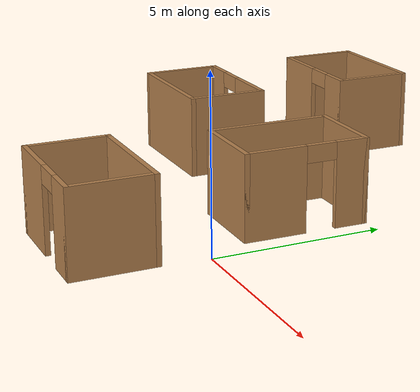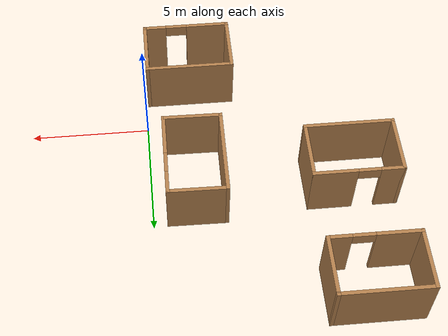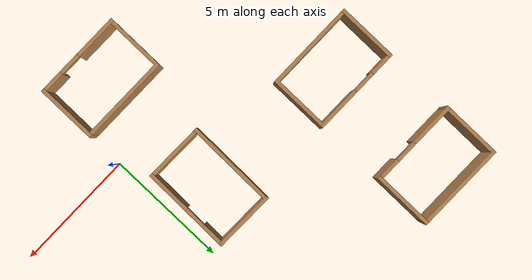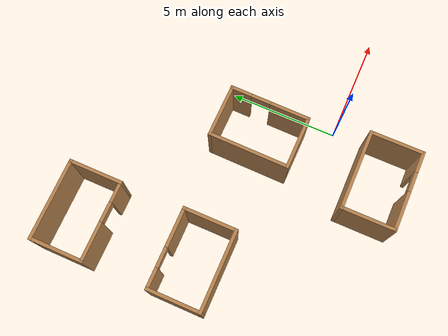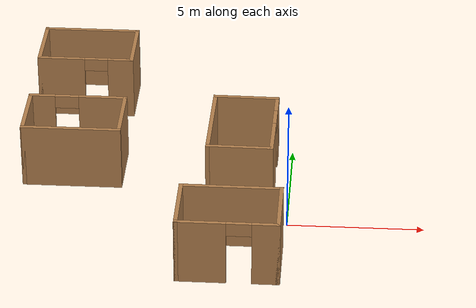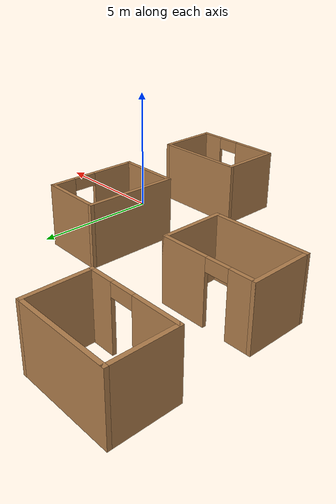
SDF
<sdf version="1.6">
 <world name="default">
  <model name="Small_Room_clone_5">
   <pose>-8.18512 3.39277 0 0 0 -3.14016</pose>
   <link name="Wall_0">
    <pose>0 -1.175 0 0 -0 0</pose>
    <visual name="Wall_0_Visual_0">
     <pose>-0.9525 0 1.25 0 -0 0</pose>
     <geometry><box><size>1.845 0.15 2.5</size></box></geometry>
     <material>
      <script><uri>file://media/materials/scripts/gazebo.material</uri><name>Gazebo/Wood</name></script>
      <ambient>1 1 1 1</ambient>
     </material>
     <meta><layer>0</layer></meta>
    </visual>
    <collision name="Wall_0_Collision_0">
     <geometry><box><size>1.845 0.15 2.5</size></box></geometry>
     <pose>-0.9525 0 1.25 0 -0 0</pose>
    </collision>
    <visual name="Wall_0_Visual_1">
     <pose>1.3725 0 1.25 0 -0 0</pose>
     <geometry><box><size>1.005 0.15 2.5</size></box></geometry>
     <material>
      <script><uri>file://media/materials/scripts/gazebo.material</uri><name>Gazebo/Wood</name></script>
      <ambient>1 1 1 1</ambient>
     </material>
     <meta><layer>0</layer></meta>
    </visual>
    <collision name="Wall_0_Collision_1">
     <geometry><box><size>1.005 0.15 2.5</size></box></geometry>
     <pose>1.3725 0 1.25 0 -0 0</pose>
    </collision>
    <visual name="Wall_0_Visual_2">
     <pose>0.42 0 2.25 0 -0 0</pose>
     <geometry><box><size>0.9 0.15 0.5</size></box></geometry>
     <material>
      <script><uri>file://media/materials/scripts/gazebo.material</uri><name>Gazebo/Wood</name></script>
      <ambient>1 1 1 1</ambient>
     </material>
     <meta><layer>0</layer></meta>
    </visual>
    <collision name="Wall_0_Collision_2">
     <geometry><box><size>0.9 0.15 0.5</size></box></geometry>
     <pose>0.42 0 2.25 0 -0 0</pose>
    </collision>
   </link>
   <link name="Wall_1">
    <collision name="Wall_1_Collision">
     <geometry><box><size>2.5 0.15 2.5</size></box></geometry>
     <pose>0 0 1.25 0 -0 0</pose>
    </collision>
    <visual name="Wall_1_Visual">
     <pose>0 0 1.25 0 -0 0</pose>
     <geometry><box><size>2.5 0.15 2.5</size></box></geometry>
     <material>
      <script><uri>file://media/materials/scripts/gazebo.material</uri><name>Gazebo/Wood</name></script>
      <ambient>1 1 1 1</ambient>
     </material>
     <meta><layer>0</layer></meta>
    </visual>
    <pose>1.8 0 0 0 -0 1.5708</pose>
   </link>
   <link name="Wall_2">
    <collision name="Wall_2_Collision">
     <geometry><box><size>3.75 0.15 2.5</size></box></geometry>
     <pose>0 0 1.25 0 -0 0</pose>
    </collision>
    <visual name="Wall_2_Visual">
     <pose>0 0 1.25 0 -0 0</pose>
     <geometry><box><size>3.75 0.15 2.5</size></box></geometry>
     <material>
      <script><uri>file://media/materials/scripts/gazebo.material</uri><name>Gazebo/Wood</name></script>
      <ambient>0.760784 0.662745 0.627451 1</ambient>
     </material>
     <meta><layer>0</layer></meta>
    </visual>
    <pose>0 1.175 0 0 -0 3.14159</pose>
   </link>
   <link name="Wall_3">
    <collision name="Wall_3_Collision">
     <geometry><box><size>2.5 0.15 2.5</size></box></geometry>
     <pose>0 0 1.25 0 -0 0</pose>
    </collision>
    <visual name="Wall_3_Visual">
     <pose>0 0 1.25 0 -0 0</pose>
     <geometry><box><size>2.5 0.15 2.5</size></box></geometry>
     <material>
      <script><uri>file://media/materials/scripts/gazebo.material</uri><name>Gazebo/Wood</name></script>
      <ambient>0.760784 0.662745 0.627451 1</ambient>
     </material>
     <meta><layer>0</layer></meta>
    </visual>
    <pose>-1.8 0 0 0 0 -1.5708</pose>
   </link>
   <static>1</static>
  </model>
  <model name="Small_Room_clone_6_0">
   <link name="Wall_0">
    <pose>0 -1.175 0 0 -0 0</pose>
    <inertial>
     <mass>1</mass>
     <inertia><ixx>1</ixx><ixy>0</ixy><ixz>0</ixz><iyy>1</iyy><iyz>0</iyz><izz>1</izz></inertia>
    </inertial>
    <visual name="Wall_0_Visual_0">
     <pose>-0.9525 0 1.25 0 -0 0</pose>
     <geometry><box><size>1.845 0.15 2.5</size></box></geometry>
     <material>
      <script><uri>file://media/materials/scripts/gazebo.material</uri><name>Gazebo/Wood</name></script>
      <ambient>1 1 1 1</ambient>
      <diffuse>1 1 0.7 1</diffuse>
      <specular>0.6 0.3 0.3 1</specular>
      <emissive>0 0.4 0.2 1</emissive>
      <shader type="vertex"><normal_map>__default__</normal_map></shader>
     </material>
     <meta><layer>0</layer></meta>
    </visual>
    <visual name="Wall_0_Visual_1">
     <pose>1.3725 0 1.25 0 -0 0</pose>
     <geometry><box><size>1.005 0.15 2.5</size></box></geometry>
     <material>
      <script><uri>file://media/materials/scripts/gazebo.material</uri><name>Gazebo/Wood</name></script>
      <ambient>1 1 1 1</ambient>
      <diffuse>1 1 1 1</diffuse>
      <specular>0.2 0.2 0.2 1</specular>
      <emissive>0 0 0 1</emissive>
      <shader type="vertex"><normal_map>__default__</normal_map></shader>
     </material>
     <meta><layer>0</layer></meta>
    </visual>
    <visual name="Wall_0_Visual_2">
     <pose>0.42 0 2.25 0 -0 0</pose>
     <geometry><box><size>0.9 0.15 0.5</size></box></geometry>
     <material>
      <script><uri>file://media/materials/scripts/gazebo.material</uri><name>Gazebo/Wood</name></script>
      <ambient>1 1 1 1</ambient>
      <diffuse>1 1 1 1</diffuse>
      <specular>0.2 0.2 0.2 1</specular>
      <emissive>0 0 0 1</emissive>
      <shader type="vertex"><normal_map>__default__</normal_map></shader>
     </material>
     <meta><layer>0</layer></meta>
    </visual>
    <collision name="Wall_0_Collision_0">
     <pose>-0.9525 0 1.25 0 -0 0</pose>
     <geometry><box><size>1.845 0.15 2.5</size></box></geometry>
     <surface>
      <friction>
       <ode><mu>1</mu><mu2>1</mu2><fdir1>0 0 0</fdir1><slip1>0</slip1><slip2>0</slip2></ode>
       <torsional>
        <coefficient>1</coefficient>
        <patch_radius>0</patch_radius>
        <surface_radius>0</surface_radius>
        <use_patch_radius>1</use_patch_radius>
        <ode><slip>0</slip></ode>
       </torsional>
      </friction>
      <bounce><restitution_coefficient>0</restitution_coefficient><threshold>1e+06</threshold></bounce>
      <contact>
       <collide_without_contact>0</collide_without_contact>
       <collide_without_contact_bitmask>1</collide_without_contact_bitmask>
       <collide_bitmask>1</collide_bitmask>
       <ode>
        <soft_cfm>0</soft_cfm>
        <soft_erp>0.2</soft_erp>
        <kp>1e+13</kp>
        <kd>1</kd>
        <max_vel>0.01</max_vel>
        <min_depth>0</min_depth>
       </ode>
       <bullet>
        <split_impulse>1</split_impulse>
        <split_impulse_penetration_threshold>-0.01</split_impulse_penetration_threshold>
        <soft_cfm>0</soft_cfm>
        <soft_erp>0.2</soft_erp>
        <kp>1e+13</kp>
        <kd>1</kd>
       </bullet>
      </contact>
     </surface>
    </collision>
    <collision name="Wall_0_Collision_1">
     <pose>1.3725 0 1.25 0 -0 0</pose>
     <geometry><box><size>1.005 0.15 2.5</size></box></geometry>
     <surface>
      <friction>
       <ode><mu>1</mu><mu2>1</mu2><fdir1>0 0 0</fdir1><slip1>0</slip1><slip2>0</slip2></ode>
       <torsional>
        <coefficient>1</coefficient>
        <patch_radius>0</patch_radius>
        <surface_radius>0</surface_radius>
        <use_patch_radius>1</use_patch_radius>
        <ode><slip>0</slip></ode>
       </torsional>
      </friction>
      <bounce><restitution_coefficient>0</restitution_coefficient><threshold>1e+06</threshold></bounce>
      <contact>
       <collide_without_contact>0</collide_without_contact>
       <collide_without_contact_bitmask>1</collide_without_contact_bitmask>
       <collide_bitmask>1</collide_bitmask>
       <ode>
        <soft_cfm>0</soft_cfm>
        <soft_erp>0.2</soft_erp>
        <kp>1e+13</kp>
        <kd>1</kd>
        <max_vel>0.01</max_vel>
        <min_depth>0</min_depth>
       </ode>
       <bullet>
        <split_impulse>1</split_impulse>
        <split_impulse_penetration_threshold>-0.01</split_impulse_penetration_threshold>
        <soft_cfm>0</soft_cfm>
        <soft_erp>0.2</soft_erp>
        <kp>1e+13</kp>
        <kd>1</kd>
       </bullet>
      </contact>
     </surface>
    </collision>
    <collision name="Wall_0_Collision_2">
     <pose>0.42 0 2.25 0 -0 0</pose>
     <geometry><box><size>0.9 0.15 0.5</size></box></geometry>
     <surface>
      <friction>
       <ode><mu>1</mu><mu2>1</mu2><fdir1>0 0 0</fdir1><slip1>0</slip1><slip2>0</slip2></ode>
       <torsional>
        <coefficient>1</coefficient>
        <patch_radius>0</patch_radius>
        <surface_radius>0</surface_radius>
        <use_patch_radius>1</use_patch_radius>
        <ode><slip>0</slip></ode>
       </torsional>
      </friction>
      <bounce><restitution_coefficient>0</restitution_coefficient><threshold>1e+06</threshold></bounce>
      <contact>
       <collide_without_contact>0</collide_without_contact>
       <collide_without_contact_bitmask>1</collide_without_contact_bitmask>
       <collide_bitmask>1</collide_bitmask>
       <ode>
        <soft_cfm>0</soft_cfm>
        <soft_erp>0.2</soft_erp>
        <kp>1e+13</kp>
        <kd>1</kd>
        <max_vel>0.01</max_vel>
        <min_depth>0</min_depth>
       </ode>
       <bullet>
        <split_impulse>1</split_impulse>
        <split_impulse_penetration_threshold>-0.01</split_impulse_penetration_threshold>
        <soft_cfm>0</soft_cfm>
        <soft_erp>0.2</soft_erp>
        <kp>1e+13</kp>
        <kd>1</kd>
       </bullet>
      </contact>
     </surface>
    </collision>
   </link>
   <link name="Wall_1">
    <pose>1.8 0 0 0 -0 1.5708</pose>
    <visual name="Wall_1_Visual">
     <pose>0 0 1.25 0 -0 0</pose>
     <geometry><box><size>2.5 0.15 2.5</size></box></geometry>
     <material>
      <script><uri>file://media/materials/scripts/gazebo.material</uri><name>Gazebo/Wood</name></script>
      <ambient>1 1 1 1</ambient>
      <diffuse>1 1 1 1</diffuse>
      <specular>0.2 0.2 0.2 1</specular>
      <emissive>0 0 0 1</emissive>
     </material>
     <meta><layer>0</layer></meta>
    </visual>
    <collision name="Wall_1_Collision">
     <pose>0 0 1.25 0 -0 0</pose>
     <geometry><box><size>2.5 0.15 2.5</size></box></geometry>
     <surface>
      <friction>
       <ode><mu>1</mu><mu2>1</mu2><fdir1>0 0 0</fdir1><slip1>0</slip1><slip2>0</slip2></ode>
       <torsional>
        <coefficient>1</coefficient>
        <patch_radius>0</patch_radius>
        <surface_radius>0</surface_radius>
        <use_patch_radius>1</use_patch_radius>
        <ode><slip>0</slip></ode>
       </torsional>
      </friction>
      <bounce><restitution_coefficient>0</restitution_coefficient><threshold>1e+06</threshold></bounce>
      <contact>
       <collide_without_contact>0</collide_without_contact>
       <collide_without_contact_bitmask>1</collide_without_contact_bitmask>
       <collide_bitmask>1</collide_bitmask>
       <ode>
        <soft_cfm>0</soft_cfm>
        <soft_erp>0.2</soft_erp>
        <kp>1e+13</kp>
        <kd>1</kd>
        <max_vel>0.01</max_vel>
        <min_depth>0</min_depth>
       </ode>
       <bullet>
        <split_impulse>1</split_impulse>
        <split_impulse_penetration_threshold>-0.01</split_impulse_penetration_threshold>
        <soft_cfm>0</soft_cfm>
        <soft_erp>0.2</soft_erp>
        <kp>1e+13</kp>
        <kd>1</kd>
       </bullet>
      </contact>
     </surface>
    </collision>
   </link>
   <link name="Wall_2">
    <pose>0 1.175 0 0 -0 3.14159</pose>
    <inertial>
     <mass>1</mass>
     <inertia><ixx>1</ixx><ixy>0</ixy><ixz>0</ixz><iyy>1</iyy><iyz>0</iyz><izz>1</izz></inertia>
    </inertial>
    <visual name="Wall_2_Visual">
     <pose>0 0 1.25 0 -0 0</pose>
     <geometry><box><size>3.75 0.15 2.5</size></box></geometry>
     <material>
      <script><uri>file://media/materials/scripts/gazebo.material</uri><name>Gazebo/Wood</name></script>
      <ambient>0.961 0.363 0.227 1</ambient>
      <diffuse>0.6 0.6 0.7 1</diffuse>
      <specular>0.5 0.6 0.5 1</specular>
      <emissive>0.3 0 0 1</emissive>
      <shader type="vertex"><normal_map>__default__</normal_map></shader>
     </material>
     <meta><layer>0</layer></meta>
    </visual>
    <collision name="Wall_2_Collision">
     <pose>0 0 1.25 0 -0 0</pose>
     <geometry><box><size>3.75 0.15 2.5</size></box></geometry>
     <surface>
      <friction>
       <ode><mu>1</mu><mu2>1</mu2><fdir1>0 0 0</fdir1><slip1>0</slip1><slip2>0</slip2></ode>
       <torsional>
        <coefficient>1</coefficient>
        <patch_radius>0</patch_radius>
        <surface_radius>0</surface_radius>
        <use_patch_radius>1</use_patch_radius>
        <ode><slip>0</slip></ode>
       </torsional>
      </friction>
      <bounce><restitution_coefficient>0</restitution_coefficient><threshold>1e+06</threshold></bounce>
      <contact>
       <collide_without_contact>0</collide_without_contact>
       <collide_without_contact_bitmask>1</collide_without_contact_bitmask>
       <collide_bitmask>1</collide_bitmask>
       <ode>
        <soft_cfm>0</soft_cfm>
        <soft_erp>0.2</soft_erp>
        <kp>1e+13</kp>
        <kd>1</kd>
        <max_vel>0.01</max_vel>
        <min_depth>0</min_depth>
       </ode>
       <bullet>
        <split_impulse>1</split_impulse>
        <split_impulse_penetration_threshold>-0.01</split_impulse_penetration_threshold>
        <soft_cfm>0</soft_cfm>
        <soft_erp>0.2</soft_erp>
        <kp>1e+13</kp>
        <kd>1</kd>
       </bullet>
      </contact>
     </surface>
    </collision>
   </link>
   <link name="Wall_3">
    <pose>-1.8 0 0 0 0 -1.5708</pose>
    <inertial>
     <mass>1</mass>
     <inertia><ixx>1</ixx><ixy>0</ixy><ixz>0</ixz><iyy>1</iyy><iyz>0</iyz><izz>1</izz></inertia>
    </inertial>
    <visual name="Wall_3_Visual">
     <pose>0 0 1.25 0 -0 0</pose>
     <geometry><box><size>2.5 0.15 2.5</size></box></geometry>
     <material>
      <script><uri>file://media/materials/scripts/gazebo.material</uri><name>Gazebo/Wood</name></script>
      <ambient>0.761 0.663 0.627 1</ambient>
      <diffuse>0.6 0.6 1 1</diffuse>
      <specular>0.4 0.2 0.4 1</specular>
      <emissive>0 0 0 1</emissive>
      <shader type="vertex"><normal_map>__default__</normal_map></shader>
     </material>
     <meta><layer>0</layer></meta>
    </visual>
    <collision name="Wall_3_Collision">
     <pose>0 0 1.25 0 -0 0</pose>
     <geometry><box><size>2.5 0.15 2.5</size></box></geometry>
     <surface>
      <friction>
       <ode><mu>1</mu><mu2>1</mu2><fdir1>0 0 0</fdir1><slip1>0</slip1><slip2>0</slip2></ode>
       <torsional>
        <coefficient>1</coefficient>
        <patch_radius>0</patch_radius>
        <surface_radius>0</surface_radius>
        <use_patch_radius>1</use_patch_radius>
        <ode><slip>0</slip></ode>
       </torsional>
      </friction>
      <bounce><restitution_coefficient>0</restitution_coefficient><threshold>1e+06</threshold></bounce>
      <contact>
       <collide_without_contact>0</collide_without_contact>
       <collide_without_contact_bitmask>1</collide_without_contact_bitmask>
       <collide_bitmask>1</collide_bitmask>
       <ode>
        <soft_cfm>0</soft_cfm>
        <soft_erp>0.2</soft_erp>
        <kp>1e+13</kp>
        <kd>1</kd>
        <max_vel>0.01</max_vel>
        <min_depth>0</min_depth>
       </ode>
       <bullet>
        <split_impulse>1</split_impulse>
        <split_impulse_penetration_threshold>-0.01</split_impulse_penetration_threshold>
        <soft_cfm>0</soft_cfm>
        <soft_erp>0.2</soft_erp>
        <kp>1e+13</kp>
        <kd>1</kd>
       </bullet>
      </contact>
     </surface>
    </collision>
   </link>
   <static>1</static>
   <pose>-1.95591 -2.58707 0 0 -0 0</pose>
  </model>
  <model name="Small_Room_clone_4_0">
   <link name="Wall_0">
    <pose>0 -1.175 0 0 -0 0</pose>
    <inertial>
     <mass>1</mass>
     <inertia><ixx>1</ixx><ixy>0</ixy><ixz>0</ixz><iyy>1</iyy><iyz>0</iyz><izz>1</izz></inertia>
    </inertial>
    <visual name="Wall_0_Visual_0">
     <pose>-0.9525 0 1.25 0 -0 0</pose>
     <geometry><box><size>1.845 0.15 2.5</size></box></geometry>
     <material>
      <script><uri>file://media/materials/scripts/gazebo.material</uri><name>Gazebo/Wood</name></script>
      <ambient>0.4 0 1 1</ambient>
      <diffuse>0.6 0.5 0.4 1</diffuse>
      <specular>0.3 0.5 0.1 1</specular>
      <emissive>0 0 0 1</emissive>
      <shader type="vertex"><normal_map>__default__</normal_map></shader>
     </material>
     <meta><layer>0</layer></meta>
    </visual>
    <visual name="Wall_0_Visual_1">
     <pose>1.3725 0 1.25 0 -0 0</pose>
     <geometry><box><size>1.005 0.15 2.5</size></box></geometry>
     <material>
      <script><uri>file://media/materials/scripts/gazebo.material</uri><name>Gazebo/Wood</name></script>
      <ambient>0.5 0.7 0.6 1</ambient>
      <diffuse>0.5 0.3 0.6 1</diffuse>
      <specular>0.4 0.3 0.1 1</specular>
      <emissive>0 0 0 1</emissive>
      <shader type="vertex"><normal_map>__default__</normal_map></shader>
     </material>
     <meta><layer>0</layer></meta>
    </visual>
    <visual name="Wall_0_Visual_2">
     <pose>0.42 0 2.25 0 -0 0</pose>
     <geometry><box><size>0.9 0.15 0.5</size></box></geometry>
     <material>
      <script><uri>file://media/materials/scripts/gazebo.material</uri><name>Gazebo/Wood</name></script>
      <ambient>0.5 0.6 0.6 1</ambient>
      <diffuse>0.5 0.6 0.4 1</diffuse>
      <specular>0.1 0.3 0.3 1</specular>
      <emissive>0 0 0 1</emissive>
      <shader type="vertex"><normal_map>__default__</normal_map></shader>
     </material>
     <meta><layer>0</layer></meta>
    </visual>
    <collision name="Wall_0_Collision_0">
     <pose>-0.9525 0 1.25 0 -0 0</pose>
     <geometry><box><size>1.845 0.15 2.5</size></box></geometry>
     <surface>
      <friction>
       <ode><mu>1</mu><mu2>1</mu2><fdir1>0 0 0</fdir1><slip1>0</slip1><slip2>0</slip2></ode>
       <torsional>
        <coefficient>1</coefficient>
        <patch_radius>0</patch_radius>
        <surface_radius>0</surface_radius>
        <use_patch_radius>1</use_patch_radius>
        <ode><slip>0</slip></ode>
       </torsional>
      </friction>
      <bounce><restitution_coefficient>0</restitution_coefficient><threshold>1e+06</threshold></bounce>
      <contact>
       <collide_without_contact>0</collide_without_contact>
       <collide_without_contact_bitmask>1</collide_without_contact_bitmask>
       <collide_bitmask>1</collide_bitmask>
       <ode>
        <soft_cfm>0</soft_cfm>
        <soft_erp>0.2</soft_erp>
        <kp>1e+13</kp>
        <kd>1</kd>
        <max_vel>0.01</max_vel>
        <min_depth>0</min_depth>
       </ode>
       <bullet>
        <split_impulse>1</split_impulse>
        <split_impulse_penetration_threshold>-0.01</split_impulse_penetration_threshold>
        <soft_cfm>0</soft_cfm>
        <soft_erp>0.2</soft_erp>
        <kp>1e+13</kp>
        <kd>1</kd>
       </bullet>
      </contact>
     </surface>
    </collision>
    <collision name="Wall_0_Collision_1">
     <pose>1.3725 0 1.25 0 -0 0</pose>
     <geometry><box><size>1.005 0.15 2.5</size></box></geometry>
     <surface>
      <friction>
       <ode><mu>1</mu><mu2>1</mu2><fdir1>0 0 0</fdir1><slip1>0</slip1><slip2>0</slip2></ode>
       <torsional>
        <coefficient>1</coefficient>
        <patch_radius>0</patch_radius>
        <surface_radius>0</surface_radius>
        <use_patch_radius>1</use_patch_radius>
        <ode><slip>0</slip></ode>
       </torsional>
      </friction>
      <bounce><restitution_coefficient>0</restitution_coefficient><threshold>1e+06</threshold></bounce>
      <contact>
       <collide_without_contact>0</collide_without_contact>
       <collide_without_contact_bitmask>1</collide_without_contact_bitmask>
       <collide_bitmask>1</collide_bitmask>
       <ode>
        <soft_cfm>0</soft_cfm>
        <soft_erp>0.2</soft_erp>
        <kp>1e+13</kp>
        <kd>1</kd>
        <max_vel>0.01</max_vel>
        <min_depth>0</min_depth>
       </ode>
       <bullet>
        <split_impulse>1</split_impulse>
        <split_impulse_penetration_threshold>-0.01</split_impulse_penetration_threshold>
        <soft_cfm>0</soft_cfm>
        <soft_erp>0.2</soft_erp>
        <kp>1e+13</kp>
        <kd>1</kd>
       </bullet>
      </contact>
     </surface>
    </collision>
    <collision name="Wall_0_Collision_2">
     <pose>0.42 0 2.25 0 -0 0</pose>
     <geometry><box><size>0.9 0.15 0.5</size></box></geometry>
     <surface>
      <friction>
       <ode><mu>1</mu><mu2>1</mu2><fdir1>0 0 0</fdir1><slip1>0</slip1><slip2>0</slip2></ode>
       <torsional>
        <coefficient>1</coefficient>
        <patch_radius>0</patch_radius>
        <surface_radius>0</surface_radius>
        <use_patch_radius>1</use_patch_radius>
        <ode><slip>0</slip></ode>
       </torsional>
      </friction>
      <bounce><restitution_coefficient>0</restitution_coefficient><threshold>1e+06</threshold></bounce>
      <contact>
       <collide_without_contact>0</collide_without_contact>
       <collide_without_contact_bitmask>1</collide_without_contact_bitmask>
       <collide_bitmask>1</collide_bitmask>
       <ode>
        <soft_cfm>0</soft_cfm>
        <soft_erp>0.2</soft_erp>
        <kp>1e+13</kp>
        <kd>1</kd>
        <max_vel>0.01</max_vel>
        <min_depth>0</min_depth>
       </ode>
       <bullet>
        <split_impulse>1</split_impulse>
        <split_impulse_penetration_threshold>-0.01</split_impulse_penetration_threshold>
        <soft_cfm>0</soft_cfm>
        <soft_erp>0.2</soft_erp>
        <kp>1e+13</kp>
        <kd>1</kd>
       </bullet>
      </contact>
     </surface>
    </collision>
   </link>
   <link name="Wall_1">
    <pose>1.8 0 0 0 -0 1.5708</pose>
    <inertial>
     <mass>1</mass>
     <inertia><ixx>1</ixx><ixy>0</ixy><ixz>0</ixz><iyy>1</iyy><iyz>0</iyz><izz>1</izz></inertia>
    </inertial>
    <visual name="Wall_1_Visual">
     <pose>0 0 1.25 0 -0 0</pose>
     <geometry><box><size>2.5 0.15 2.5</size></box></geometry>
     <material>
      <script><uri>file://media/materials/scripts/gazebo.material</uri><name>Gazebo/Wood</name></script>
      <ambient>0.5 0.9 0.6 1</ambient>
      <diffuse>0.8 0.4 0.7 1</diffuse>
      <specular>0.6 0.3 0.1 1</specular>
      <emissive>0 0 0 1</emissive>
      <shader type="vertex"><normal_map>__default__</normal_map></shader>
     </material>
     <meta><layer>0</layer></meta>
    </visual>
    <collision name="Wall_1_Collision">
     <pose>0 0 1.25 0 -0 0</pose>
     <geometry><box><size>2.5 0.15 2.5</size></box></geometry>
     <surface>
      <friction>
       <ode><mu>1</mu><mu2>1</mu2><fdir1>0 0 0</fdir1><slip1>0</slip1><slip2>0</slip2></ode>
       <torsional>
        <coefficient>1</coefficient>
        <patch_radius>0</patch_radius>
        <surface_radius>0</surface_radius>
        <use_patch_radius>1</use_patch_radius>
        <ode><slip>0</slip></ode>
       </torsional>
      </friction>
      <bounce><restitution_coefficient>0</restitution_coefficient><threshold>1e+06</threshold></bounce>
      <contact>
       <collide_without_contact>0</collide_without_contact>
       <collide_without_contact_bitmask>1</collide_without_contact_bitmask>
       <collide_bitmask>1</collide_bitmask>
       <ode>
        <soft_cfm>0</soft_cfm>
        <soft_erp>0.2</soft_erp>
        <kp>1e+13</kp>
        <kd>1</kd>
        <max_vel>0.01</max_vel>
        <min_depth>0</min_depth>
       </ode>
       <bullet>
        <split_impulse>1</split_impulse>
        <split_impulse_penetration_threshold>-0.01</split_impulse_penetration_threshold>
        <soft_cfm>0</soft_cfm>
        <soft_erp>0.2</soft_erp>
        <kp>1e+13</kp>
        <kd>1</kd>
       </bullet>
      </contact>
     </surface>
    </collision>
   </link>
   <link name="Wall_2">
    <pose>0 1.175 0 0 -0 3.14159</pose>
    <visual name="Wall_2_Visual">
     <pose>0 0 1.25 0 -0 0</pose>
     <geometry><box><size>3.75 0.15 2.5</size></box></geometry>
     <material>
      <script><uri>file://media/materials/scripts/gazebo.material</uri><name>Gazebo/Wood</name></script>
      <ambient>0.760784 0.662745 0.627451 1</ambient>
      <diffuse>1 1 1 1</diffuse>
      <specular>0.2 0.2 0.2 1</specular>
      <emissive>0 0 0 1</emissive>
     </material>
     <meta><layer>0</layer></meta>
    </visual>
    <collision name="Wall_2_Collision">
     <pose>0 0 1.25 0 -0 0</pose>
     <geometry><box><size>3.75 0.15 2.5</size></box></geometry>
     <surface>
      <friction>
       <ode><mu>1</mu><mu2>1</mu2><fdir1>0 0 0</fdir1><slip1>0</slip1><slip2>0</slip2></ode>
       <torsional>
        <coefficient>1</coefficient>
        <patch_radius>0</patch_radius>
        <surface_radius>0</surface_radius>
        <use_patch_radius>1</use_patch_radius>
        <ode><slip>0</slip></ode>
       </torsional>
      </friction>
      <bounce><restitution_coefficient>0</restitution_coefficient><threshold>1e+06</threshold></bounce>
      <contact>
       <collide_without_contact>0</collide_without_contact>
       <collide_without_contact_bitmask>1</collide_without_contact_bitmask>
       <collide_bitmask>1</collide_bitmask>
       <ode>
        <soft_cfm>0</soft_cfm>
        <soft_erp>0.2</soft_erp>
        <kp>1e+13</kp>
        <kd>1</kd>
        <max_vel>0.01</max_vel>
        <min_depth>0</min_depth>
       </ode>
       <bullet>
        <split_impulse>1</split_impulse>
        <split_impulse_penetration_threshold>-0.01</split_impulse_penetration_threshold>
        <soft_cfm>0</soft_cfm>
        <soft_erp>0.2</soft_erp>
        <kp>1e+13</kp>
        <kd>1</kd>
       </bullet>
      </contact>
     </surface>
    </collision>
   </link>
   <link name="Wall_3">
    <pose>-1.8 0 0 0 0 -1.5708</pose>
    <visual name="Wall_3_Visual">
     <pose>0 0 1.25 0 -0 0</pose>
     <geometry><box><size>2.5 0.15 2.5</size></box></geometry>
     <material>
      <script><uri>file://media/materials/scripts/gazebo.material</uri><name>Gazebo/Wood</name></script>
      <ambient>0.760784 0.662745 0.627451 1</ambient>
      <diffuse>1 1 1 1</diffuse>
      <specular>0.2 0.2 0.2 1</specular>
      <emissive>0 0 0 1</emissive>
     </material>
     <meta><layer>0</layer></meta>
    </visual>
    <collision name="Wall_3_Collision">
     <pose>0 0 1.25 0 -0 0</pose>
     <geometry><box><size>2.5 0.15 2.5</size></box></geometry>
     <surface>
      <friction>
       <ode><mu>1</mu><mu2>1</mu2><fdir1>0 0 0</fdir1><slip1>0</slip1><slip2>0</slip2></ode>
       <torsional>
        <coefficient>1</coefficient>
        <patch_radius>0</patch_radius>
        <surface_radius>0</surface_radius>
        <use_patch_radius>1</use_patch_radius>
        <ode><slip>0</slip></ode>
       </torsional>
      </friction>
      <bounce><restitution_coefficient>0</restitution_coefficient><threshold>1e+06</threshold></bounce>
      <contact>
       <collide_without_contact>0</collide_without_contact>
       <collide_without_contact_bitmask>1</collide_without_contact_bitmask>
       <collide_bitmask>1</collide_bitmask>
       <ode>
        <soft_cfm>0</soft_cfm>
        <soft_erp>0.2</soft_erp>
        <kp>1e+13</kp>
        <kd>1</kd>
        <max_vel>0.01</max_vel>
        <min_depth>0</min_depth>
       </ode>
       <bullet>
        <split_impulse>1</split_impulse>
        <split_impulse_penetration_threshold>-0.01</split_impulse_penetration_threshold>
        <soft_cfm>0</soft_cfm>
        <soft_erp>0.2</soft_erp>
        <kp>1e+13</kp>
        <kd>1</kd>
       </bullet>
      </contact>
     </surface>
    </collision>
   </link>
   <static>1</static>
   <pose>-8.24902 8.65187 0 0 -0 0</pose>
  </model>
  <model name="Small_Room_0">
   <link name="Wall_0">
    <pose>0 -1.175 0 0 -0 0</pose>
    <visual name="Wall_0_Visual_1">
     <pose>1.3725 0 1.25 0 -0 0</pose>
     <geometry><box><size>1.005 0.15 2.5</size></box></geometry>
     <material>
      <script><uri>file://media/materials/scripts/gazebo.material</uri><name>Gazebo/Wood</name></script>
      <ambient>1 1 1 1</ambient>
      <diffuse>1 1 1 1</diffuse>
      <specular>0.2 0.2 0.2 1</specular>
      <emissive>0 0 0 1</emissive>
     </material>
     <meta><layer>0</layer></meta>
    </visual>
    <visual name="Wall_0_Visual_0">
     <pose>-0.9525 0 1.25 0 -0 0</pose>
     <geometry><box><size>1.845 0.15 2.5</size></box></geometry>
     <material>
      <script><uri>file://media/materials/scripts/gazebo.material</uri><name>Gazebo/Wood</name></script>
      <ambient>1 1 1 1</ambient>
      <diffuse>1 1 1 1</diffuse>
      <specular>0.2 0.2 0.2 1</specular>
      <emissive>0 0 0 1</emissive>
     </material>
     <meta><layer>0</layer></meta>
    </visual>
    <visual name="Wall_0_Visual_2">
     <pose>0.42 0 2.25 0 -0 0</pose>
     <geometry><box><size>0.9 0.15 0.5</size></box></geometry>
     <material>
      <script><uri>file://media/materials/scripts/gazebo.material</uri><name>Gazebo/Wood</name></script>
      <ambient>1 1 1 1</ambient>
      <diffuse>1 1 1 1</diffuse>
      <specular>0.2 0.2 0.2 1</specular>
      <emissive>0 0 0 1</emissive>
     </material>
     <meta><layer>0</layer></meta>
    </visual>
    <collision name="Wall_0_Collision_0">
     <pose>-0.9525 0 1.25 0 -0 0</pose>
     <geometry><box><size>1.845 0.15 2.5</size></box></geometry>
     <surface>
      <friction>
       <ode><mu>1</mu><mu2>1</mu2><fdir1>0 0 0</fdir1><slip1>0</slip1><slip2>0</slip2></ode>
       <torsional>
        <coefficient>1</coefficient>
        <patch_radius>0</patch_radius>
        <surface_radius>0</surface_radius>
        <use_patch_radius>1</use_patch_radius>
        <ode><slip>0</slip></ode>
       </torsional>
      </friction>
      <bounce><restitution_coefficient>0</restitution_coefficient><threshold>1e+06</threshold></bounce>
      <contact>
       <collide_without_contact>0</collide_without_contact>
       <collide_without_contact_bitmask>1</collide_without_contact_bitmask>
       <collide_bitmask>1</collide_bitmask>
       <ode>
        <soft_cfm>0</soft_cfm>
        <soft_erp>0.2</soft_erp>
        <kp>1e+13</kp>
        <kd>1</kd>
        <max_vel>0.01</max_vel>
        <min_depth>0</min_depth>
       </ode>
       <bullet>
        <split_impulse>1</split_impulse>
        <split_impulse_penetration_threshold>-0.01</split_impulse_penetration_threshold>
        <soft_cfm>0</soft_cfm>
        <soft_erp>0.2</soft_erp>
        <kp>1e+13</kp>
        <kd>1</kd>
       </bullet>
      </contact>
     </surface>
    </collision>
    <collision name="Wall_0_Collision_1">
     <pose>1.3725 0 1.25 0 -0 0</pose>
     <geometry><box><size>1.005 0.15 2.5</size></box></geometry>
     <surface>
      <friction>
       <ode><mu>1</mu><mu2>1</mu2><fdir1>0 0 0</fdir1><slip1>0</slip1><slip2>0</slip2></ode>
       <torsional>
        <coefficient>1</coefficient>
        <patch_radius>0</patch_radius>
        <surface_radius>0</surface_radius>
        <use_patch_radius>1</use_patch_radius>
        <ode><slip>0</slip></ode>
       </torsional>
      </friction>
      <bounce><restitution_coefficient>0</restitution_coefficient><threshold>1e+06</threshold></bounce>
      <contact>
       <collide_without_contact>0</collide_without_contact>
       <collide_without_contact_bitmask>1</collide_without_contact_bitmask>
       <collide_bitmask>1</collide_bitmask>
       <ode>
        <soft_cfm>0</soft_cfm>
        <soft_erp>0.2</soft_erp>
        <kp>1e+13</kp>
        <kd>1</kd>
        <max_vel>0.01</max_vel>
        <min_depth>0</min_depth>
       </ode>
       <bullet>
        <split_impulse>1</split_impulse>
        <split_impulse_penetration_threshold>-0.01</split_impulse_penetration_threshold>
        <soft_cfm>0</soft_cfm>
        <soft_erp>0.2</soft_erp>
        <kp>1e+13</kp>
        <kd>1</kd>
       </bullet>
      </contact>
     </surface>
    </collision>
    <collision name="Wall_0_Collision_2">
     <pose>0.42 0 2.25 0 -0 0</pose>
     <geometry><box><size>0.9 0.15 0.5</size></box></geometry>
     <surface>
      <friction>
       <ode><mu>1</mu><mu2>1</mu2><fdir1>0 0 0</fdir1><slip1>0</slip1><slip2>0</slip2></ode>
       <torsional>
        <coefficient>1</coefficient>
        <patch_radius>0</patch_radius>
        <surface_radius>0</surface_radius>
        <use_patch_radius>1</use_patch_radius>
        <ode><slip>0</slip></ode>
       </torsional>
      </friction>
      <bounce><restitution_coefficient>0</restitution_coefficient><threshold>1e+06</threshold></bounce>
      <contact>
       <collide_without_contact>0</collide_without_contact>
       <collide_without_contact_bitmask>1</collide_without_contact_bitmask>
       <collide_bitmask>1</collide_bitmask>
       <ode>
        <soft_cfm>0</soft_cfm>
        <soft_erp>0.2</soft_erp>
        <kp>1e+13</kp>
        <kd>1</kd>
        <max_vel>0.01</max_vel>
        <min_depth>0</min_depth>
       </ode>
       <bullet>
        <split_impulse>1</split_impulse>
        <split_impulse_penetration_threshold>-0.01</split_impulse_penetration_threshold>
        <soft_cfm>0</soft_cfm>
        <soft_erp>0.2</soft_erp>
        <kp>1e+13</kp>
        <kd>1</kd>
       </bullet>
      </contact>
     </surface>
    </collision>
   </link>
   <link name="Wall_1">
    <pose>1.8 -0 0 0 -0 1.5708</pose>
    <inertial>
     <mass>1</mass>
     <inertia><ixx>1</ixx><ixy>0</ixy><ixz>0</ixz><iyy>1</iyy><iyz>0</iyz><izz>1</izz></inertia>
    </inertial>
    <visual name="Wall_1_Visual">
     <pose>0 0 1.25 0 -0 0</pose>
     <geometry><box><size>2.5 0.15 2.5</size></box></geometry>
     <material>
      <script><uri>file://media/materials/scripts/gazebo.material</uri><name>Gazebo/Wood</name></script>
      <ambient>0.8 0.6 0.6 1</ambient>
      <diffuse>0.8 0.6 0.5 1</diffuse>
      <specular>0.2 0.4 0.2 1</specular>
      <emissive>0 0 0 1</emissive>
      <shader type="vertex"><normal_map>__default__</normal_map></shader>
     </material>
     <meta><layer>0</layer></meta>
    </visual>
    <collision name="Wall_1_Collision">
     <pose>0 0 1.25 0 -0 0</pose>
     <geometry><box><size>2.5 0.15 2.5</size></box></geometry>
     <surface>
      <friction>
       <ode><mu>1</mu><mu2>1</mu2><fdir1>0 0 0</fdir1><slip1>0</slip1><slip2>0</slip2></ode>
       <torsional>
        <coefficient>1</coefficient>
        <patch_radius>0</patch_radius>
        <surface_radius>0</surface_radius>
        <use_patch_radius>1</use_patch_radius>
        <ode><slip>0</slip></ode>
       </torsional>
      </friction>
      <bounce><restitution_coefficient>0</restitution_coefficient><threshold>1e+06</threshold></bounce>
      <contact>
       <collide_without_contact>0</collide_without_contact>
       <collide_without_contact_bitmask>1</collide_without_contact_bitmask>
       <collide_bitmask>1</collide_bitmask>
       <ode>
        <soft_cfm>0</soft_cfm>
        <soft_erp>0.2</soft_erp>
        <kp>1e+13</kp>
        <kd>1</kd>
        <max_vel>0.01</max_vel>
        <min_depth>0</min_depth>
       </ode>
       <bullet>
        <split_impulse>1</split_impulse>
        <split_impulse_penetration_threshold>-0.01</split_impulse_penetration_threshold>
        <soft_cfm>0</soft_cfm>
        <soft_erp>0.2</soft_erp>
        <kp>1e+13</kp>
        <kd>1</kd>
       </bullet>
      </contact>
     </surface>
    </collision>
   </link>
   <link name="Wall_2">
    <pose>-0 1.175 0 0 -0 3.14159</pose>
    <inertial>
     <mass>1</mass>
     <inertia><ixx>1</ixx><ixy>0</ixy><ixz>0</ixz><iyy>1</iyy><iyz>0</iyz><izz>1</izz></inertia>
    </inertial>
    <visual name="Wall_2_Visual">
     <pose>0 0 1.25 0 -0 0</pose>
     <geometry><box><size>3.75 0.15 2.5</size></box></geometry>
     <material>
      <script><uri>file://media/materials/scripts/gazebo.material</uri><name>Gazebo/Wood</name></script>
      <ambient>0.661 0.163 0.827 1</ambient>
      <diffuse>1 0 1 1</diffuse>
      <specular>0.2 0 0.2 1</specular>
      <emissive>0 0 0 1</emissive>
      <shader type="vertex"><normal_map>__default__</normal_map></shader>
     </material>
     <meta><layer>0</layer></meta>
    </visual>
    <collision name="Wall_2_Collision">
     <pose>0 0 1.25 0 -0 0</pose>
     <geometry><box><size>3.75 0.15 2.5</size></box></geometry>
     <surface>
      <friction>
       <ode><mu>1</mu><mu2>1</mu2><fdir1>0 0 0</fdir1><slip1>0</slip1><slip2>0</slip2></ode>
       <torsional>
        <coefficient>1</coefficient>
        <patch_radius>0</patch_radius>
        <surface_radius>0</surface_radius>
        <use_patch_radius>1</use_patch_radius>
        <ode><slip>0</slip></ode>
       </torsional>
      </friction>
      <bounce><restitution_coefficient>0</restitution_coefficient><threshold>1e+06</threshold></bounce>
      <contact>
       <collide_without_contact>0</collide_without_contact>
       <collide_without_contact_bitmask>1</collide_without_contact_bitmask>
       <collide_bitmask>1</collide_bitmask>
       <ode>
        <soft_cfm>0</soft_cfm>
        <soft_erp>0.2</soft_erp>
        <kp>1e+13</kp>
        <kd>1</kd>
        <max_vel>0.01</max_vel>
        <min_depth>0</min_depth>
       </ode>
       <bullet>
        <split_impulse>1</split_impulse>
        <split_impulse_penetration_threshold>-0.01</split_impulse_penetration_threshold>
        <soft_cfm>0</soft_cfm>
        <soft_erp>0.2</soft_erp>
        <kp>1e+13</kp>
        <kd>1</kd>
       </bullet>
      </contact>
     </surface>
    </collision>
   </link>
   <link name="Wall_3">
    <pose>-1.8 0 0 0 0 -1.5708</pose>
    <inertial>
     <mass>1</mass>
     <inertia><ixx>1</ixx><ixy>0</ixy><ixz>0</ixz><iyy>1</iyy><iyz>0</iyz><izz>1</izz></inertia>
    </inertial>
    <visual name="Wall_3_Visual">
     <pose>0 0 1.25 0 -0 0</pose>
     <geometry><box><size>2.5 0.15 2.5</size></box></geometry>
     <material>
      <script><uri>file://media/materials/scripts/gazebo.material</uri><name>Gazebo/Wood</name></script>
      <ambient>0.761 0.863 0.427 1</ambient>
      <diffuse>0.5 0.5 0.4 1</diffuse>
      <specular>0.2 0.4 0.1 1</specular>
      <emissive>0 0 0 1</emissive>
      <shader type="vertex"><normal_map>__default__</normal_map></shader>
     </material>
     <meta><layer>0</layer></meta>
    </visual>
    <collision name="Wall_3_Collision">
     <pose>0 0 1.25 0 -0 0</pose>
     <geometry><box><size>2.5 0.15 2.5</size></box></geometry>
     <surface>
      <friction>
       <ode><mu>1</mu><mu2>1</mu2><fdir1>0 0 0</fdir1><slip1>0</slip1><slip2>0</slip2></ode>
       <torsional>
        <coefficient>1</coefficient>
        <patch_radius>0</patch_radius>
        <surface_radius>0</surface_radius>
        <use_patch_radius>1</use_patch_radius>
        <ode><slip>0</slip></ode>
       </torsional>
      </friction>
      <bounce><restitution_coefficient>0</restitution_coefficient><threshold>1e+06</threshold></bounce>
      <contact>
       <collide_without_contact>0</collide_without_contact>
       <collide_without_contact_bitmask>1</collide_without_contact_bitmask>
       <collide_bitmask>1</collide_bitmask>
       <ode>
        <soft_cfm>0</soft_cfm>
        <soft_erp>0.2</soft_erp>
        <kp>1e+13</kp>
        <kd>1</kd>
        <max_vel>0.01</max_vel>
        <min_depth>0</min_depth>
       </ode>
       <bullet>
        <split_impulse>1</split_impulse>
        <split_impulse_penetration_threshold>-0.01</split_impulse_penetration_threshold>
        <soft_cfm>0</soft_cfm>
        <soft_erp>0.2</soft_erp>
        <kp>1e+13</kp>
        <kd>1</kd>
       </bullet>
      </contact>
     </surface>
    </collision>
   </link>
   <static>1</static>
   <pose>-1.81695 3.11221 0 0 -0 1.55876</pose>
  </model>
 </world>
</sdf>
